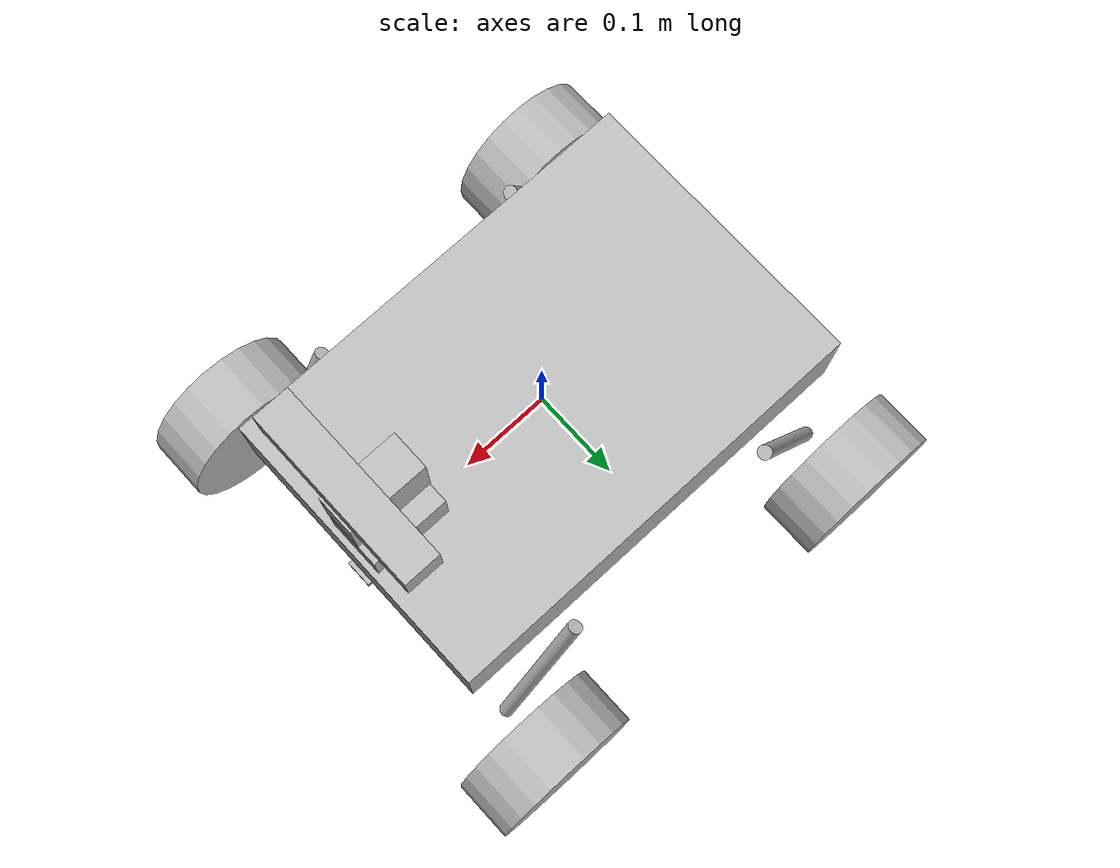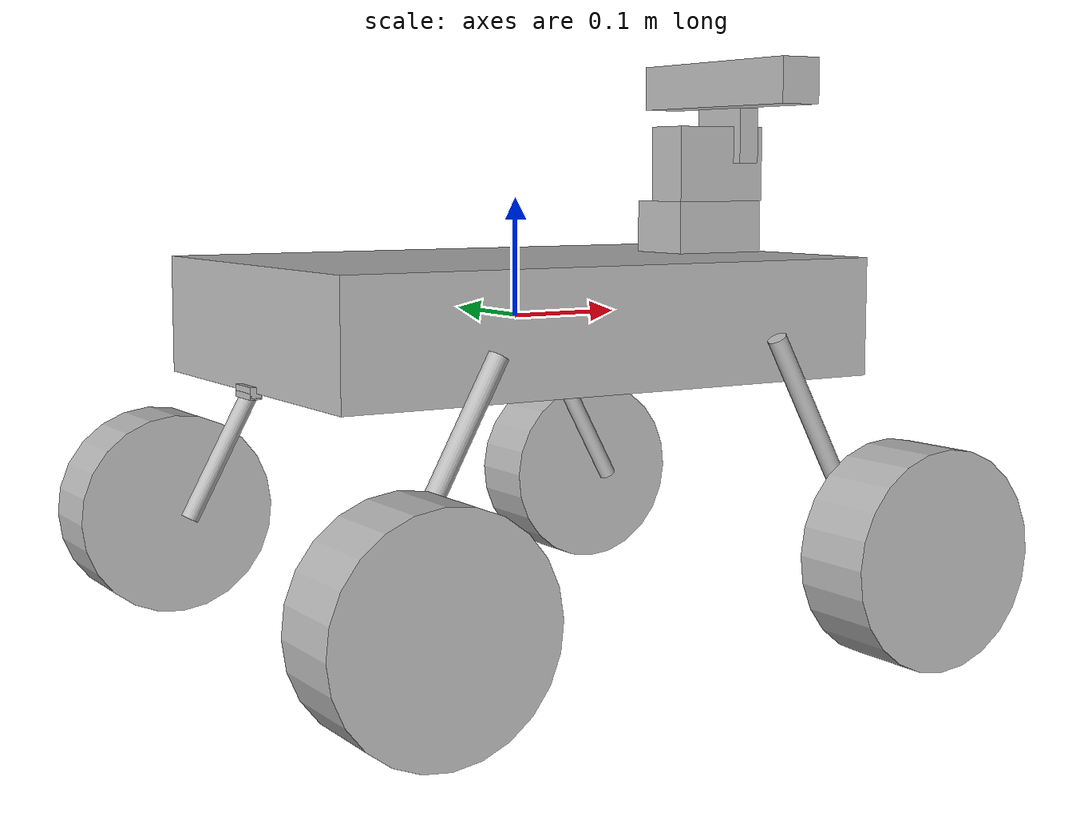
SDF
<?xml version="1.0"?>
<sdf version="1.5">
  <model name='rover_amalia'>
    <plugin name="skid_steer_drive" filename="libgazebo_ros_skid_steer_drive.so">
      <robotNamespace>rover_amalia</robotNamespace>
      <broadcastTF>1</broadcastTF>
      <leftFrontJoint>shaft_f_l</leftFrontJoint>
      <rightFrontJoint>shaft_f_r</rightFrontJoint>
      <leftRearJoint>shaft_p_l</leftRearJoint>
      <rightRearJoint>shaft_p_r</rightRearJoint>
      <wheelSeparation>0.400</wheelSeparation>
      <wheelDiameter>0.18</wheelDiameter>
      <torque>5.0</torque>
      <commandTopic>cmd_vel</commandTopic>
      <odometryTopic>odom</odometryTopic>
      <odometryFrame>odom</odometryFrame>
      <robotBaseFrame>base_footprint</robotBaseFrame>
      <updateRate>100.0</updateRate>
    </plugin>
    <static>0</static>
    <link name='chassis'>
      <pose>0 0 0 0 0 0</pose>
      <inertial>
        <pose>0.0216667 0 -0.0215556 0 -0 0</pose>
        <mass>9</mass>
        <inertia>
          <ixx>900.12</ixx>
          <ixy>-3.46945e-18</ixy>
          <ixz>-0.0139533</ixz>
          <iyy>900.352</iyy>
          <iyz>0</iyz>
          <izz>900.455</izz>
        </inertia>
      </inertial>
      <collision name='chassis_collision'>
        <pose>0 0 0 0 -0 0</pose>
        <geometry>
          <box>
            <size>0.492 0.334 0.1</size>
          </box>
        </geometry>
        <max_contacts>10</max_contacts>
        <surface>
          <contact>
            <ode />
          </contact>
          <bounce />
          <friction>
            <ode />
          </friction>
        </surface>
      </collision>
      <collision name='chassis_collision_base'>
        <pose>0.195 0 0.073 0 -0 0</pose>
        <geometry>
          <box>
            <size>0.089 0.064 0.046</size>
          </box>
        </geometry>
        <max_contacts>10</max_contacts>
        <surface>
          <contact>
            <ode />
          </contact>
          <bounce />
          <friction>
            <ode />
          </friction>
        </surface>
      </collision>
      <collision name='chassis_collision_leg_f_l'>
        <pose>0.177943 0.19 -0.0987583 0 -0.5 0</pose>
        <geometry>
          <cylinder>
            <length>0.2</length>
            <radius>0.008</radius>
          </cylinder>
        </geometry>
        <max_contacts>10</max_contacts>
        <surface>
          <contact>
            <ode />
          </contact>
          <bounce />
          <friction>
            <ode />
          </friction>
        </surface>
      </collision>
      <collision name='chassis_collision_leg_f_r'>
        <pose>0.177943 -0.19 -0.0987583 0 -0.5 0</pose>
        <geometry>
          <cylinder>
            <length>0.2</length>
            <radius>0.008</radius>
          </cylinder>
        </geometry>
        <max_contacts>10</max_contacts>
        <surface>
          <contact>
            <ode />
          </contact>
          <bounce />
          <friction>
            <ode />
          </friction>
        </surface>
      </collision>
      <collision name='chassis_collision_leg_p_l'>
        <pose>-0.177943 0.19 -0.0987583 0 0.5 0</pose>
        <geometry>
          <cylinder>
            <length>0.2</length>
            <radius>0.008</radius>
          </cylinder>
        </geometry>
        <max_contacts>10</max_contacts>
        <surface>
          <contact>
            <ode />
          </contact>
          <bounce />
          <friction>
            <ode />
          </friction>
        </surface>
      </collision>
      <collision name='chassis_collision_leg_p_r'>
        <pose>-0.177943 -0.19 -0.0987583 0 0.5 0</pose>
        <geometry>
          <cylinder>
            <length>0.2</length>
            <radius>0.008</radius>
          </cylinder>
        </geometry>
        <max_contacts>10</max_contacts>
        <surface>
          <contact>
            <ode />
          </contact>
          <bounce />
          <friction>
            <ode />
          </friction>
        </surface>
      </collision>
      <visual name='chassis_visual'>
        <pose>0 0 0 0 -0 0</pose>
        <geometry>
          <box>
            <size>0.492 0.334 0.1</size>
          </box>
        </geometry>
      </visual>
      <visual name='chassis_visual_Range_Front'>
        <pose>0.246 0 -0.05 0 -0 0</pose>
        <geometry>
          <box>
            <size>0.01 0.03 0.01</size>
          </box>
        </geometry>
      </visual>
      <visual name='chassis_visual_Range_Front_Down'>
        <pose>0.246 0 -0.05 0 1.57 0</pose>
        <geometry>
          <box>
            <size>0.01 0.03 0.01</size>
          </box>
        </geometry>
      </visual>
      <visual name='chassis_visual_Range_Post'>
        <pose>-0.246 0 -0.05 3.14159 0.00159265 3.14159</pose>
        <geometry>
          <box>
            <size>0.01 0.03 0.01</size>
          </box>
        </geometry>
      </visual>
      <visual name='chassis_visual_Range_Post_Down'>
        <pose>-0.246 0 -0.05 0 1.57 0</pose>
        <geometry>
          <box>
            <size>0.01 0.03 0.01</size>
          </box>
        </geometry>
      </visual>
      <visual name='chassis_visual_base'>
        <pose>0.195 0 0.073 0 -0 0</pose>
        <geometry>
          <box>
            <size>0.089 0.064 0.046</size>
          </box>
        </geometry>
      </visual>
      <visual name='chassis_visual_leg_f_l'>
        <pose>0.177943 0.19 -0.0987583 0 -0.5 0</pose>
        <geometry>
          <cylinder>
            <length>0.2</length>
            <radius>0.008</radius>
          </cylinder>
        </geometry>
      </visual>
      <visual name='chassis_visual_leg_f_r'>
        <pose>0.177943 -0.19 -0.0987583 0 -0.5 0</pose>
        <geometry>
          <cylinder>
            <length>0.2</length>
            <radius>0.008</radius>
          </cylinder>
        </geometry>
      </visual>
      <visual name='chassis_visual_leg_p_l'>
        <pose>-0.177943 0.19 -0.0987583 0 0.5 0</pose>
        <geometry>
          <cylinder>
            <length>0.2</length>
            <radius>0.008</radius>
          </cylinder>
        </geometry>
      </visual>
      <visual name='chassis_visual_leg_p_r'>
        <pose>-0.177943 -0.19 -0.0987583 0 0.5 0</pose>
        <geometry>
          <cylinder>
            <length>0.2</length>
            <radius>0.008</radius>
          </cylinder>
        </geometry>
      </visual>
      <velocity_decay>
        <linear>0</linear>
        <angular>0</angular>
      </velocity_decay>
      <self_collide>0</self_collide>
      <kinematic>0</kinematic>
      <gravity>1</gravity>
    </link>
    <link name='testa'>
      <pose>0.2175 -0.012 0.096 0 -0 3.14</pose>
      <inertial>
        <pose>0 0 0 0 -0 0</pose>
        <mass>1</mass>
        <inertia>
          <ixx>100</ixx>
          <ixy>0</ixy>
          <ixz>0</ixz>
          <iyy>100</iyy>
          <iyz>0</iyz>
          <izz>100</izz>
        </inertia>
      </inertial>
      <visual name='testa_visual'>
        <pose>0.023 0 0.033 0 -0 0</pose>
        <geometry>
          <box>
            <size>0.09 0.043 0.066</size>
          </box>
        </geometry>
      </visual>
      <velocity_decay>
        <linear>0</linear>
        <angular>0</angular>
      </velocity_decay>
      <self_collide>0</self_collide>
      <kinematic>0</kinematic>
      <gravity>1</gravity>
    </link>
    <joint name='pan' type='revolute'>
      <child>testa</child>
      <parent>chassis</parent>
      <axis>
        <xyz>0 0 1</xyz>
        <limit>
          <lower>-1e-16</lower>
          <upper>1e-16</upper>
        </limit>
        <dynamics />
        <use_parent_model_frame>1</use_parent_model_frame>
      </axis>
    </joint>
    <link name='braccio'>
      <pose>0.2175 -0.012 0.14 3.14 -0 3.14</pose>
      <inertial>
        <pose>0 0 -0.02 0 -0 0</pose>
        <mass>2</mass>
        <inertia>
          <ixx>200.001</ixx>
          <ixy>0</ixy>
          <ixz>0</ixz>
          <iyy>200.001</iyy>
          <iyz>0</iyz>
          <izz>200</izz>
        </inertia>
      </inertial>
      <collision name='braccio_collision'>
        <pose>0 0 -0.014 0 -0 0</pose>
        <geometry>
          <box>
            <size>0.02 0.061 0.049</size>
          </box>
        </geometry>
        <max_contacts>10</max_contacts>
        <surface>
          <contact>
            <ode />
          </contact>
          <bounce />
          <friction>
            <ode />
          </friction>
        </surface>
      </collision>
      <visual name='braccio_visual'>
        <pose>0 0 -0.014 0 -0 0</pose>
        <geometry>
          <box>
            <size>0.02 0.061 0.049</size>
          </box>
        </geometry>
      </visual>
      <visual name='braccio_visual_camera'>
        <pose>1.59519e-05 3.18404e-05 -0.06 1.57159 0.00159265 -1.57159</pose>
        <geometry>
          <box>
            <size>0.2 0.04 0.04</size>
          </box>
        </geometry>
      </visual>
      <sensor name="depth_camera" type="depth">
        <pose>0.0 0.0 0.0 0.0 3.14 0.0</pose>
        <camera>
          <horizontal_fov>1.578</horizontal_fov>
          <image>
            <width>640</width>
            <height>480</height>
            <format>R8G8B8</format>
          </image>
          <clip>
            <near>0.4</near>
            <far>100</far>
          </clip>
        </camera>
        <plugin name="depth_camera_plugin" filename="libgazebo_ros_depth_camera.so">
          <alwaysOn>1</alwaysOn>
          <updateRate>10.0</updateRate>
          <imageTopicName>image_raw</imageTopicName>
          <depthImageTopicName>depth_raw</depthImageTopicName>
          <depthImageCameraInfoTopicName>camera_info</depthImageCameraInfoTopicName>
          <pointCloudTopicName>points</pointCloudTopicName>
          <cameraInfoTopicName>camera_info</cameraInfoTopicName>
          <cameraName>depth_cam</cameraName>
          <frameName>/base_link</frameName>
          <pointCloudCutoff>0.001</pointCloudCutoff>
          <distortionK1>0.0</distortionK1>
          <distortionK2>0.0</distortionK2>
          <distortionK3>0.0</distortionK3>
          <distortionT1>0.0</distortionT1>
          <distortionT2>0.0</distortionT2>
        </plugin>
        <always_on>true</always_on>
        <update_rate>10.0</update_rate>
      </sensor>
      <sensor name="camera" type="multicamera">
        <always_on>1</always_on>
        <update_rate>30</update_rate>
        <visualize>true</visualize>
        <camera name="left">
          <pose>0 0 0 0 3.14 0</pose>
          <horizontal_fov>1.047</horizontal_fov>
          <image>
            <width>320</width>
            <height>240</height>
          </image>
          <clip>
            <near>0.4</near>
            <far>100</far>
          </clip>
        </camera>
        <camera name="right">
          <pose>0 -0.2 0 0 3.14 0</pose>
          <horizontal_fov>1.047</horizontal_fov>
          <image>
            <width>320</width>
            <height>240</height>
          </image>
          <clip>
            <near>0.4</near>
            <far>100</far>
          </clip>
        </camera>
        <plugin name="stereo_camera_controller" filename="libgazebo_ros_multicamera.so">
          <alwaysOn>true</alwaysOn>
          <updateRate>0.0</updateRate>
          <cameraName>camera</cameraName>
          <imageTopicName>image_raw</imageTopicName>
          <cameraInfoTopicName>camera_info</cameraInfoTopicName>
          <frameName>left_camera_optical_frame</frameName>
          <hackBaseline>0.07</hackBaseline>
          <distortionK1>0.0</distortionK1>
          <distortionK2>0.0</distortionK2>
          <distortionK3>0.0</distortionK3>
          <distortionT1>0.0</distortionT1>
          <distortionT2>0.0</distortionT2>
        </plugin>
      </sensor>
      <velocity_decay>
        <linear>0</linear>
        <angular>0</angular>
      </velocity_decay>
      <self_collide>0</self_collide>
      <kinematic>0</kinematic>
      <gravity>1</gravity>
    </link>
    <joint name='tilt' type='revolute'>
      <child>braccio</child>
      <parent>testa</parent>
      <axis>
        <xyz>-0.001593 -0.999997 -0.001593</xyz>
        <limit>
          <lower>-1e-16</lower>
          <upper>1e-16</upper>
        </limit>
        <dynamics />
        <use_parent_model_frame>1</use_parent_model_frame>
      </axis>
    </joint>
    <link name='wheel_f_l'>
      <pose>0.225885 0.217 -0.186517 0 -0.5 0</pose>
      <inertial>
        <pose>0 0 0 0 -0 0</pose>
        <mass>1</mass>
        <inertia>
          <ixx>100</ixx>
          <ixy>0</ixy>
          <ixz>0</ixz>
          <iyy>100</iyy>
          <iyz>0</iyz>
          <izz>100</izz>
        </inertia>
      </inertial>
      <collision name='wheel_f_l_collision'>
        <pose>0 0.035 0 1.57 -0 0</pose>
        <geometry>
          <cylinder>
            <length>0.07</length>
            <radius>0.09</radius>
          </cylinder>
        </geometry>
        <max_contacts>10</max_contacts>
        <surface>
          <contact>
            <ode />
          </contact>
          <bounce />
          <friction>
            <ode />
          </friction>
        </surface>
      </collision>
      <visual name='wheel_f_l_visual'>
        <pose>0 0.035 0 1.57 -0 0</pose>
        <geometry>
          <cylinder>
            <length>0.07</length>
            <radius>0.09</radius>
          </cylinder>
        </geometry>
      </visual>
      <velocity_decay>
        <linear>0</linear>
        <angular>0</angular>
      </velocity_decay>
      <self_collide>0</self_collide>
      <kinematic>0</kinematic>
      <gravity>1</gravity>
    </link>
    <joint name='shaft_f_l' type='revolute'>
      <child>wheel_f_l</child>
      <parent>chassis</parent>
      <axis>
        <xyz>0 1 0</xyz>
        <limit>
          <lower>-1e+16</lower>
          <upper>1e+16</upper>
        </limit>
        <dynamics />
        <use_parent_model_frame>1</use_parent_model_frame>
      </axis>
    </joint>
    <link name='wheel_f_r'>
      <pose>0.225885 -0.217 -0.186517 0 -0.5 0</pose>
      <inertial>
        <pose>0 0 0 0 -0 0</pose>
        <mass>1</mass>
        <inertia>
          <ixx>100</ixx>
          <ixy>0</ixy>
          <ixz>0</ixz>
          <iyy>100</iyy>
          <iyz>0</iyz>
          <izz>100</izz>
        </inertia>
      </inertial>
      <collision name='wheel_f_r_collision'>
        <pose>0 -0.035 0 1.57 -0 0</pose>
        <geometry>
          <cylinder>
            <length>0.07</length>
            <radius>0.09</radius>
          </cylinder>
        </geometry>
        <max_contacts>10</max_contacts>
        <surface>
          <contact>
            <ode />
          </contact>
          <bounce />
          <friction>
            <ode />
          </friction>
        </surface>
      </collision>
      <visual name='wheel_f_r_visual'>
        <pose>0 -0.035 0 1.57 -0 0</pose>
        <geometry>
          <cylinder>
            <length>0.07</length>
            <radius>0.09</radius>
          </cylinder>
        </geometry>
      </visual>
      <velocity_decay>
        <linear>0</linear>
        <angular>0</angular>
      </velocity_decay>
      <self_collide>0</self_collide>
      <kinematic>0</kinematic>
      <gravity>1</gravity>
    </link>
    <joint name='shaft_f_r' type='revolute'>
      <child>wheel_f_r</child>
      <parent>chassis</parent>
      <axis>
        <xyz>0 1 0</xyz>
        <limit>
          <lower>-1e+16</lower>
          <upper>1e+16</upper>
        </limit>
        <dynamics />
        <use_parent_model_frame>1</use_parent_model_frame>
      </axis>
    </joint>
    <link name='wheel_p_l'>
      <pose>-0.225885 0.217 -0.186517 0 0.5 0</pose>
      <inertial>
        <pose>0 0 0 0 -0 0</pose>
        <mass>1</mass>
        <inertia>
          <ixx>100</ixx>
          <ixy>0</ixy>
          <ixz>0</ixz>
          <iyy>100</iyy>
          <iyz>0</iyz>
          <izz>100</izz>
        </inertia>
      </inertial>
      <collision name='wheel_p_l_collision'>
        <pose>0 0.035 0 1.57 -0 0</pose>
        <geometry>
          <cylinder>
            <length>0.07</length>
            <radius>0.09</radius>
          </cylinder>
        </geometry>
        <max_contacts>10</max_contacts>
        <surface>
          <contact>
            <ode />
          </contact>
          <bounce />
          <friction>
            <ode />
          </friction>
        </surface>
      </collision>
      <visual name='wheel_p_l_visual'>
        <pose>0 0.035 0 1.57 -0 0</pose>
        <geometry>
          <cylinder>
            <length>0.07</length>
            <radius>0.09</radius>
          </cylinder>
        </geometry>
      </visual>
      <velocity_decay>
        <linear>0</linear>
        <angular>0</angular>
      </velocity_decay>
      <self_collide>0</self_collide>
      <kinematic>0</kinematic>
      <gravity>1</gravity>
    </link>
    <joint name='shaft_p_l' type='revolute'>
      <child>wheel_p_l</child>
      <parent>chassis</parent>
      <axis>
        <xyz>0 1 0</xyz>
        <limit>
          <lower>-1e+16</lower>
          <upper>1e+16</upper>
        </limit>
        <dynamics />
        <use_parent_model_frame>1</use_parent_model_frame>
      </axis>
    </joint>
    <link name='wheel_p_r'>
      <pose>-0.225885 -0.217 -0.186517 0 0.5 0</pose>
      <inertial>
        <pose>0 0 0 0 -0 0</pose>
        <mass>1</mass>
        <inertia>
          <ixx>100</ixx>
          <ixy>0</ixy>
          <ixz>0</ixz>
          <iyy>100</iyy>
          <iyz>0</iyz>
          <izz>100</izz>
        </inertia>
      </inertial>
      <collision name='wheel_p_r_collision'>
        <pose>0 -0.035 0 1.57 -0 0</pose>
        <geometry>
          <cylinder>
            <length>0.07</length>
            <radius>0.09</radius>
          </cylinder>
        </geometry>
        <max_contacts>10</max_contacts>
        <surface>
          <contact>
            <ode />
          </contact>
          <bounce />
          <friction>
            <ode />
          </friction>
        </surface>
      </collision>
      <visual name='wheel_p_r_visual'>
        <pose>0 -0.035 0 1.57 -0 0</pose>
        <geometry>
          <cylinder>
            <length>0.07</length>
            <radius>0.09</radius>
          </cylinder>
        </geometry>
      </visual>
      <velocity_decay>
        <linear>0</linear>
        <angular>0</angular>
      </velocity_decay>
      <self_collide>0</self_collide>
      <kinematic>0</kinematic>
      <gravity>1</gravity>
    </link>
    <joint name='shaft_p_r' type='revolute'>
      <child>wheel_p_r</child>
      <parent>chassis</parent>
      <axis>
        <xyz>0 1 0</xyz>
        <limit>
          <lower>-1e+16</lower>
          <upper>1e+16</upper>
        </limit>
        <dynamics />
        <use_parent_model_frame>1</use_parent_model_frame>
      </axis>
    </joint>
    <pose>0 0 0 0 0 0</pose>
  </model>
</sdf>
